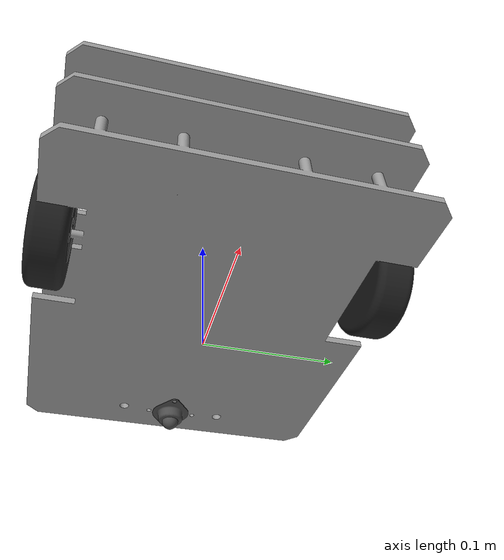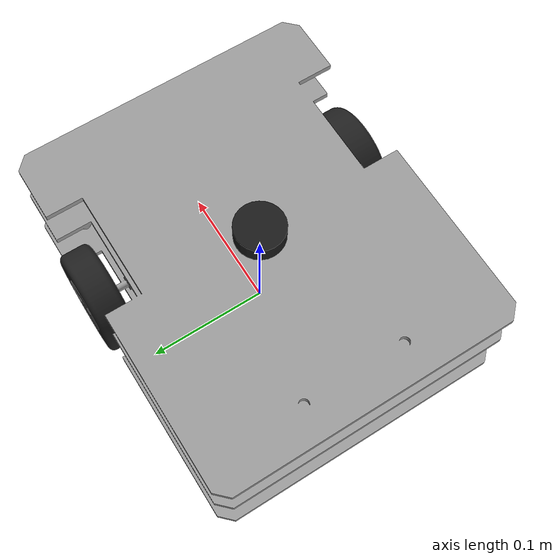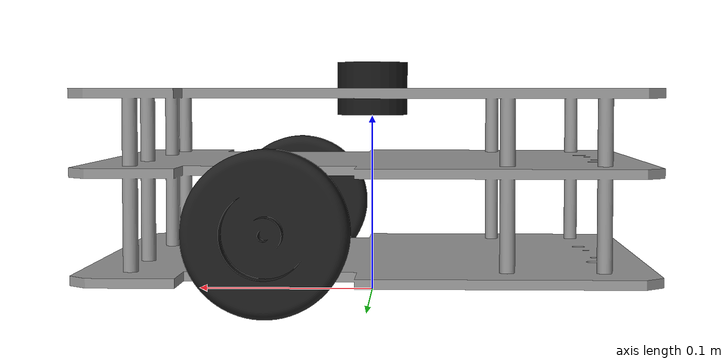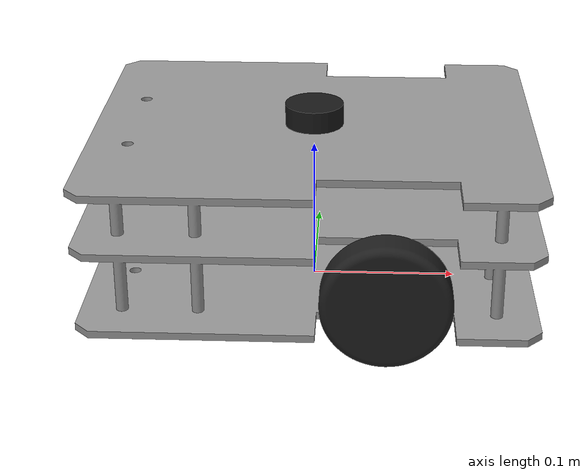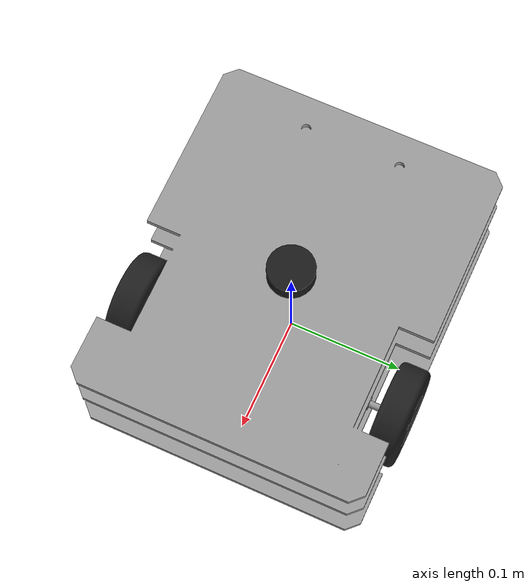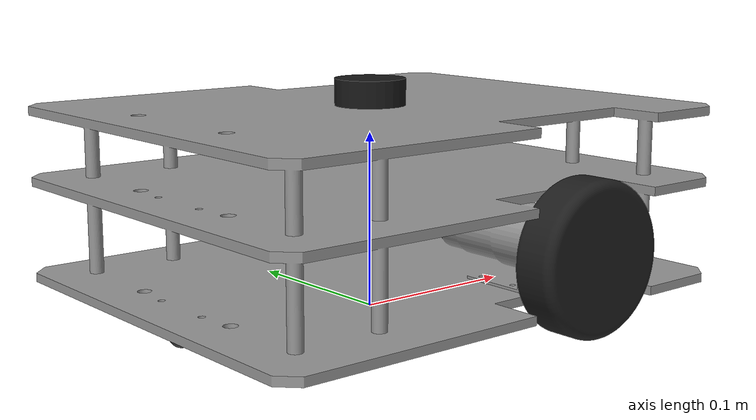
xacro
<?xml version="1.0"?>
<robot name="rover" xmlns:xacro="http://www.ros.org/wiki/xacro">
  <!-- ===================== Measured dimensions ===================== -->
  <xacro:property name="base_length" value="0.300"/>
  <xacro:property name="base_width"  value="0.250"/>
  <xacro:property name="base_thickness" value="0.100"/>
  <xacro:property name="base_height" value="${base_thickness}"/>
  <xacro:property name="base_collision_z" value="${base_height/2}"/>
  <xacro:property name="ground_clearance" value="0.0156"/>
  <xacro:property name="caster_visual_rpy" value="-1.5708 0 0"/>
  <xacro:property name="caster_ground_reach" value="0.0156"/>
  <xacro:property name="caster_ball_radius" value="0.007"/>
  <xacro:property name="wheel_radius" value="0.0425"/>
  <xacro:property name="wheel_thickness" value="0.026"/>
  <xacro:property name="wheel_separation" value="0.235"/>
  <xacro:property name="wheel_axle_x" value="0.050"/>
  <xacro:property name="caster_offset_x_from_axle" value="-0.175"/>
  <xacro:property name="caster_x" value="${wheel_axle_x + caster_offset_x_from_axle}"/>
  <xacro:property name="sensor_offset_x" value="0.150"/>
  <xacro:property name="sensor_offset_z" value="0.0425"/>
  <xacro:property name="base_link_z" value="${ground_clearance}"/>
  <xacro:property name="base_visual_x" value="0.150"/>
  <xacro:property name="base_visual_y" value="0.125"/>
  <xacro:property name="base_visual_z" value="0.005"/>
  <xacro:property name="wheel_z" value="${wheel_radius - base_link_z}"/>
  <xacro:property name="mesh_scale" value="0.001 0.001 0.001"/>
  <xacro:property name="base_mesh_rpy" value = "1.5708 0 0"/>
  <xacro:property name="lidar_offset_x" value="0.0"/>
  <xacro:property name="lidar_offset_y" value="0.0"/>
  <xacro:property name="lidar_offset_z" value="0.100"/>

  <link name="base_footprint"/>
  <joint name="base_joint" type="fixed">
    <parent link="base_footprint"/>
    <child  link="base_link"/>
    <origin xyz="0 0 ${base_link_z}" rpy="0 0 0"/>
  </joint>

  <link name="base_link">
    <visual>
      <origin xyz="${base_visual_x} ${base_visual_y} ${base_visual_z}" rpy="${base_mesh_rpy}"/>
      <geometry>
        <mesh filename="package://rover_description/meshes/base_plate.stl" scale="${mesh_scale}"/>
      </geometry>
    </visual>
    <collision>
      <origin xyz="0 0 ${base_collision_z}" rpy="0 0 0"/>
      <geometry>
        <box size="${base_length} ${base_width} ${base_height}"/>
      </geometry>
    </collision>
    <inertial>
      <mass value="1.0"/>
      <inertia ixx="0.01" ixy="0" ixz="0" iyy="0.01" iyz="0" izz="0.01"/>
    </inertial>
  </link>

  <link name="left_wheel_link">
    <visual>
      <origin xyz="0 -0.013 0" rpy="0 0 1.5708"/>
      <geometry>
        <mesh filename="package://rover_description/meshes/wheel.stl" scale="${mesh_scale}"/>
      </geometry>
    </visual>
    <collision>
      <origin xyz="0 0 0" rpy="1.5708 0 0"/>
      <geometry>
        <cylinder radius="${wheel_radius}" length="${wheel_thickness}"/>
      </geometry>
    </collision>
    <inertial>
      <mass value="0.1"/>
      <inertia ixx="0.0001" ixy="0" ixz="0" iyy="0.0001" iyz="0" izz="0.0001"/>
    </inertial>
  </link>
  <joint name="left_wheel_joint" type="continuous">
    <parent link="base_link"/>
    <child link="left_wheel_link"/>
    <origin xyz="${wheel_axle_x} ${wheel_separation/2} ${wheel_z}" rpy="0 0 0"/>
    <axis xyz="0 1 0"/>
    <limit effort="10.0" velocity="20.0"/>
  </joint>

  <link name="right_wheel_link">
    <visual>
      <origin xyz="0 -0.013 0" rpy="0 0 1.5708"/>
      <geometry>
        <mesh filename="package://rover_description/meshes/wheel.stl" scale="${mesh_scale}"/>
      </geometry>
    </visual>
    <collision>
      <origin xyz="0 0 0" rpy="1.5708 0 0"/>
      <geometry>
        <cylinder radius="${wheel_radius}" length="${wheel_thickness}"/>
      </geometry>
    </collision>
    <inertial>
      <mass value="0.1"/>
      <inertia ixx="0.0001" ixy="0" ixz="0" iyy="0.0001" iyz="0" izz="0.0001"/>
    </inertial>
  </link>
  <joint name="right_wheel_joint" type="continuous">
    <parent link="base_link"/>
    <child link="right_wheel_link"/>
    <origin xyz="${wheel_axle_x} ${-wheel_separation/2} ${wheel_z}" rpy="0 0 0"/>
    <axis xyz="0 1 0"/>
    <limit effort="10.0" velocity="20.0"/>
  </joint>

  <link name="caster_link">
    <visual>
      <origin xyz="0 0 0" rpy="${caster_visual_rpy}"/>
      <geometry>
        <mesh filename="package://rover_description/meshes/caster.stl" scale="${mesh_scale}"/>
      </geometry>
    </visual>
    <collision>
      <origin xyz="0 0 ${-caster_ground_reach + caster_ball_radius}" rpy="0 0 0"/>
      <geometry>
        <sphere radius="${caster_ball_radius}"/>
      </geometry>
    </collision>
    <inertial>
      <mass value="0.02"/>
      <inertia ixx="1e-6" ixy="0" ixz="0" iyy="1e-6" iyz="0" izz="1e-6"/>
    </inertial>
  </link>
  <joint name="caster_joint" type="fixed">
    <parent link="base_link"/>
    <child link="caster_link"/>
    <origin xyz="${caster_x} 0 0" rpy="0 0 0"/>
  </joint>

  <link name="sensor_link"/>
  <joint name="sensor_joint" type="fixed">
    <parent link="base_link"/>
    <child link="sensor_link"/>
    <origin xyz="${sensor_offset_x} 0 ${sensor_offset_z}" rpy="0 0 0"/>
  </joint>

  <link name="lidar_link">
    <visual>
      <geometry>
        <cylinder radius="0.02" length="0.03"/>
      </geometry>
      <material name="black">
        <color rgba="0.1 0.1 0.1 1"/>
      </material>
    </visual>
    <collision>
      <geometry>
        <cylinder radius="0.02" length="0.03"/>
      </geometry>
    </collision>
    <inertial>
      <mass value="0.05"/>
      <inertia ixx="1e-5" ixy="0" ixz="0" iyy="1e-5" iyz="0" izz="1e-5"/>
    </inertial>
  </link>

  <link name="imu_link">
    <visual>
    <geometry>
      <box size="0.02 0.02 0.01"/>
    </geometry>
    <material name="green">
      <color rgba="0 0.6 0 1"/>
    </material>
  </visual>
  <collision>
    <geometry>
      <box size="0.02 0.02 0.01"/>
    </geometry>
  </collision>
  <inertial>
    <mass value="0.01"/>
    <inertia ixx="1e-7" ixy="0" ixz="0" iyy="1e-7" iyz="0" izz="1e-7"/>
  </inertial>
</link>

<joint name="imu_joint" type="fixed">
  <parent link="base_link"/>
  <child link="imu_link"/>
  <origin xyz="0 0 0.100" rpy="0 0 0"/>
</joint>

<gazebo reference="imu_link">
  <sensor name="imu_sensor" type="imu">
    <always_on>true</always_on>
    <update_rate>100</update_rate>
    <visualize>false</visualize>
    <topic>imu</topic>
    <imu>
      <angular_velocity>
        <x><noise type="gaussian"><mean>0.0</mean><stddev>0.0009</stddev></noise></x>
        <y><noise type="gaussian"><mean>0.0</mean><stddev>0.0009</stddev></noise></y>
        <z><noise type="gaussian"><mean>0.0</mean><stddev>0.0009</stddev></noise></z>
      </angular_velocity>
      <linear_acceleration>
        <x><noise type="gaussian"><mean>0.0</mean><stddev>0.004</stddev></noise></x>
        <y><noise type="gaussian"><mean>0.0</mean><stddev>0.004</stddev></noise></y>
        <z><noise type="gaussian"><mean>0.0</mean><stddev>0.004</stddev></noise></z>
      </linear_acceleration>
    </imu>
  </sensor>
</gazebo>

  <joint name="lidar_joint" type="fixed">
    <parent link="base_link"/>
    <child link="lidar_link"/>
    <origin xyz="${lidar_offset_x} ${lidar_offset_y} ${lidar_offset_z}" rpy="0 0 0"/>
  </joint>

<!-- ===================== Gazebo materials ===================== -->
  <gazebo reference="base_link">
    <material>Gazebo/Grey</material>
  </gazebo>

  <gazebo reference="left_wheel_link">
    <material>Gazebo/Black</material>
  </gazebo>

  <gazebo reference="right_wheel_link">
    <material>Gazebo/Black</material>
  </gazebo>

  <gazebo reference="caster_link">
    <material>Gazebo/DarkGrey</material>
  </gazebo>
  <gazebo reference="lidar_link">
    <sensor name="lidar" type="lidar">
      <pose>0 0 0 0 0 0</pose>
      <topic>scan</topic>
      <update_rate>10</update_rate>
      <always_on>true</always_on>
      <visualize>true</visualize>
      <lidar>
        <scan>
          <horizontal>
            <samples>360</samples>
            <resolution>1</resolution>
            <min_angle>-3.14159</min_angle>
            <max_angle>3.14159</max_angle>
          </horizontal>
        </scan>
        <range>
          <min>0.12</min>
          <max>10.0</max>
          <resolution>0.01</resolution>
        </range>
      </lidar>
    </sensor>
  </gazebo>

  <ros2_control name="RoverSystem" type="system">
    <hardware>
      <plugin>gz_ros2_control/GazeboSimSystem</plugin>
    </hardware>
    <joint name="left_wheel_joint">
      <command_interface name="velocity"/>
      <state_interface name="velocity"/>
      <state_interface name="position"/>
    </joint>
    <joint name="right_wheel_joint">
      <command_interface name="velocity"/>
      <state_interface name="velocity"/>
      <state_interface name="position"/>
    </joint>
  </ros2_control>

  <gazebo>
    <plugin filename="gz_ros2_control-system" name="gz_ros2_control::GazeboSimROS2ControlPlugin">
      <parameters>$(find rover_description)/config/controllers.yaml</parameters>
    </plugin>
  </gazebo>

  <gazebo>
    <plugin filename="gz-sim-odometry-publisher-system" name="gz::sim::systems::OdometryPublisher">
      <odom_frame>ground_truth_odom</odom_frame>
      <robot_base_frame>base_footprint</robot_base_frame>
      <odom_topic>/model/rover/odometry_ground_truth</odom_topic>
      <odom_publish_frequency>100</odom_publish_frequency>
      <dimensions>2</dimensions>
    </plugin>
  </gazebo>
</robot>
